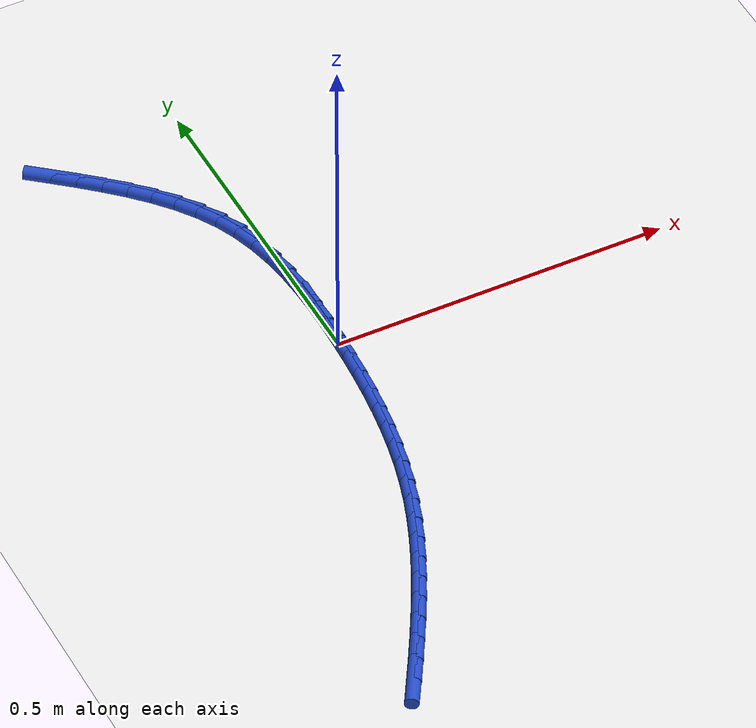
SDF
<sdf version="1.6">
 <world name="default">
  <model name="ground_plane">
   <static>1</static>
   <link name="link">
    <collision name="collision">
     <geometry><plane><normal>0 0 1</normal><size>100 100</size></plane></geometry>
     <surface><friction><ode><mu>100</mu><mu2>50</mu2></ode></friction></surface>
    </collision>
    <visual name="visual">
     <cast_shadows>0</cast_shadows>
     <geometry><plane><normal>0 0 1</normal><size>100 100</size></plane></geometry>
     <material>
      <script><uri>file://media/materials/scripts/gazebo.material</uri><name>Gazebo/WhiteGlow</name></script>
     </material>
    </visual>
   </link>
  </model>
  <model name="line">
   <link name="link_0">
    <pose>-1.2576745200831851e-17 3.469446951953614e-17 0.01 0 1.57 1.5442208761935035</pose>
    <collision name="collision">
     <geometry><cylinder><radius>0.01</radius><length>0.08</length></cylinder></geometry>
    </collision>
    <visual name="visual">
     <material>
      <script><name>Gazebo/Blue</name><uri>file://media/materials/scripts/gazebo.material</uri></script>
     </material>
     <geometry><cylinder><radius>0.01</radius><length>0.08</length></cylinder></geometry>
    </visual>
   </link>
   <link name="link_1">
    <pose>0.0009799392544859362 0.03686517164998687 0.01 0 1.57 -1.570191355124968</pose>
    <collision name="collision">
     <geometry><cylinder><radius>0.01</radius><length>0.08</length></cylinder></geometry>
    </collision>
    <visual name="visual">
     <material>
      <script><name>Gazebo/Blue</name><uri>file://media/materials/scripts/gazebo.material</uri></script>
     </material>
     <geometry><cylinder><radius>0.01</radius><length>0.08</length></cylinder></geometry>
    </visual>
   </link>
   <link name="link_2">
    <pose>0.0009576036723028721 0.07378521364273605 0.01 0 1.57 -1.5329855789430364</pose>
    <collision name="collision">
     <geometry><cylinder><radius>0.01</radius><length>0.08</length></cylinder></geometry>
    </collision>
    <visual name="visual">
     <material>
      <script><name>Gazebo/Blue</name><uri>file://media/materials/scripts/gazebo.material</uri></script>
     </material>
     <geometry><cylinder><radius>0.01</radius><length>0.08</length></cylinder></geometry>
    </visual>
   </link>
   <link name="link_3">
    <pose>-0.00043132697029535805 0.11050145868547574 0.01 0 1.57 -1.4849520792522348</pose>
    <collision name="collision">
     <geometry><cylinder><radius>0.01</radius><length>0.08</length></cylinder></geometry>
    </collision>
    <visual name="visual">
     <material>
      <script><name>Gazebo/Blue</name><uri>file://media/materials/scripts/gazebo.material</uri></script>
     </material>
     <geometry><cylinder><radius>0.01</radius><length>0.08</length></cylinder></geometry>
    </visual>
   </link>
   <link name="link_4">
    <pose>-0.0035511728970549113 0.1467552394854341 0.01 0 1.57 -1.4250680438499683</pose>
    <collision name="collision">
     <geometry><cylinder><radius>0.01</radius><length>0.08</length></cylinder></geometry>
    </collision>
    <visual name="visual">
     <material>
      <script><name>Gazebo/Blue</name><uri>file://media/materials/scripts/gazebo.material</uri></script>
     </material>
     <geometry><cylinder><radius>0.01</radius><length>0.08</length></cylinder></geometry>
    </visual>
   </link>
   <link name="link_5">
    <pose>-0.008766254331721943 0.18228788874983937 0.01 0 1.57 -1.352231468510381</pose>
    <collision name="collision">
     <geometry><cylinder><radius>0.01</radius><length>0.08</length></cylinder></geometry>
    </collision>
    <visual name="visual">
     <material>
      <script><name>Gazebo/Blue</name><uri>file://media/materials/scripts/gazebo.material</uri></script>
     </material>
     <geometry><cylinder><radius>0.01</radius><length>0.08</length></cylinder></geometry>
    </visual>
   </link>
   <link name="link_6">
    <pose>-0.016440891498042606 0.21684073918591967 0.01 0 1.57 -1.2655131130697617</pose>
    <collision name="collision">
     <geometry><cylinder><radius>0.01</radius><length>0.08</length></cylinder></geometry>
    </collision>
    <visual name="visual">
     <material>
      <script><name>Gazebo/Blue</name><uri>file://media/materials/scripts/gazebo.material</uri></script>
     </material>
     <geometry><cylinder><radius>0.01</radius><length>0.08</length></cylinder></geometry>
    </visual>
   </link>
   <link name="link_7">
    <pose>-0.026939404619763057 0.2501551235009031 0.01 0 1.57 -1.1645579242230624</pose>
    <collision name="collision">
     <geometry><cylinder><radius>0.01</radius><length>0.08</length></cylinder></geometry>
    </collision>
    <visual name="visual">
     <material>
      <script><name>Gazebo/Blue</name><uri>file://media/materials/scripts/gazebo.material</uri></script>
     </material>
     <geometry><cylinder><radius>0.01</radius><length>0.08</length></cylinder></geometry>
    </visual>
   </link>
   <link name="link_8">
    <pose>-0.040626113857494914 0.28197237443907197 0.01 0 1.57 -1.054779717884498</pose>
    <collision name="collision">
     <geometry><cylinder><radius>0.01</radius><length>0.08</length></cylinder></geometry>
    </collision>
    <visual name="visual">
     <material>
      <script><name>Gazebo/Blue</name><uri>file://media/materials/scripts/gazebo.material</uri></script>
     </material>
     <geometry><cylinder><radius>0.01</radius><length>0.08</length></cylinder></geometry>
    </visual>
   </link>
   <link name="link_9">
    <pose>-0.05772592724237543 0.3121156462107354 0.01 0 1.57 -0.9562241087145369</pose>
    <collision name="collision">
     <geometry><cylinder><radius>0.01</radius><length>0.08</length></cylinder></geometry>
    </collision>
    <visual name="visual">
     <material>
      <script><name>Gazebo/Blue</name><uri>file://media/materials/scripts/gazebo.material</uri></script>
     </material>
     <geometry><cylinder><radius>0.01</radius><length>0.08</length></cylinder></geometry>
    </visual>
   </link>
   <link name="link_10">
    <pose>-0.07791890071605993 0.3407278686217521 0.01 0 1.57 -0.87430412471775</pose>
    <collision name="collision">
     <geometry><cylinder><radius>0.01</radius><length>0.08</length></cylinder></geometry>
    </collision>
    <visual name="visual">
     <material>
      <script><name>Gazebo/Blue</name><uri>file://media/materials/scripts/gazebo.material</uri></script>
     </material>
     <geometry><cylinder><radius>0.01</radius><length>0.08</length></cylinder></geometry>
    </visual>
   </link>
   <link name="link_11">
    <pose>-0.10075200322788812 0.3680300806989035 0.01 0 1.57 -0.8086803140303752</pose>
    <collision name="collision">
     <geometry><cylinder><radius>0.01</radius><length>0.08</length></cylinder></geometry>
    </collision>
    <visual name="visual">
     <material>
      <script><name>Gazebo/Blue</name><uri>file://media/materials/scripts/gazebo.material</uri></script>
     </material>
     <geometry><cylinder><radius>0.01</radius><length>0.08</length></cylinder></geometry>
    </visual>
   </link>
   <link name="link_12">
    <pose>-0.12577220372719977 0.39424332146897073 0.01 0 1.57 -0.758361175305445</pose>
    <collision name="collision">
     <geometry><cylinder><radius>0.01</radius><length>0.08</length></cylinder></geometry>
    </collision>
    <visual name="visual">
     <material>
      <script><name>Gazebo/Blue</name><uri>file://media/materials/scripts/gazebo.material</uri></script>
     </material>
     <geometry><cylinder><radius>0.01</radius><length>0.08</length></cylinder></geometry>
    </visual>
   </link>
   <link name="link_13">
    <pose>-0.1525264711633347 0.41958862995873547 0.01 0 1.57 -0.7222043457416181</pose>
    <collision name="collision">
     <geometry><cylinder><radius>0.01</radius><length>0.08</length></cylinder></geometry>
    </collision>
    <visual name="visual">
     <material>
      <script><name>Gazebo/Blue</name><uri>file://media/materials/scripts/gazebo.material</uri></script>
     </material>
     <geometry><cylinder><radius>0.01</radius><length>0.08</length></cylinder></geometry>
    </visual>
   </link>
   <link name="link_14">
    <pose>-0.18056177448563257 0.444287045194979 0.01 0 1.57 -0.6992157820411935</pose>
    <collision name="collision">
     <geometry><cylinder><radius>0.01</radius><length>0.08</length></cylinder></geometry>
    </collision>
    <visual name="visual">
     <material>
      <script><name>Gazebo/Blue</name><uri>file://media/materials/scripts/gazebo.material</uri></script>
     </material>
     <geometry><cylinder><radius>0.01</radius><length>0.08</length></cylinder></geometry>
    </visual>
   </link>
   <link name="link_15">
    <pose>-0.20942508264343312 0.46855960620448256 0.01 0 1.57 -0.6887034426502311</pose>
    <collision name="collision">
     <geometry><cylinder><radius>0.01</radius><length>0.08</length></cylinder></geometry>
    </collision>
    <visual name="visual">
     <material>
      <script><name>Gazebo/Blue</name><uri>file://media/materials/scripts/gazebo.material</uri></script>
     </material>
     <geometry><cylinder><radius>0.01</radius><length>0.08</length></cylinder></geometry>
    </visual>
   </link>
   <link name="link_202">
    <pose>-0.19725773131092722 -0.6056717283787294 0.01 0 1.57 1.0293296119363267</pose>
    <collision name="collision">
     <geometry><cylinder><radius>0.01</radius><length>0.08</length></cylinder></geometry>
    </collision>
    <visual name="visual">
     <material>
      <script><name>Gazebo/Blue</name><uri>file://media/materials/scripts/gazebo.material</uri></script>
     </material>
     <geometry><cylinder><radius>0.01</radius><length>0.08</length></cylinder></geometry>
    </visual>
   </link>
   <link name="link_203">
    <pose>-0.17783792462449455 -0.5733820776230889 0.01 0 1.57 1.0427966446170578</pose>
    <collision name="collision">
     <geometry><cylinder><radius>0.01</radius><length>0.08</length></cylinder></geometry>
    </collision>
    <visual name="visual">
     <material>
      <script><name>Gazebo/Blue</name><uri>file://media/materials/scripts/gazebo.material</uri></script>
     </material>
     <geometry><cylinder><radius>0.01</radius><length>0.08</length></cylinder></geometry>
    </visual>
   </link>
   <link name="link_204">
    <pose>-0.15903261346520997 -0.5411388627116474 0.01 0 1.57 1.056076124286614</pose>
    <collision name="collision">
     <geometry><cylinder><radius>0.01</radius><length>0.08</length></cylinder></geometry>
    </collision>
    <visual name="visual">
     <material>
      <script><name>Gazebo/Blue</name><uri>file://media/materials/scripts/gazebo.material</uri></script>
     </material>
     <geometry><cylinder><radius>0.01</radius><length>0.08</length></cylinder></geometry>
    </visual>
   </link>
   <link name="link_205">
    <pose>-0.1408725267375772 -0.5090296367987822 0.01 0 1.57 1.0725524473567505</pose>
    <collision name="collision">
     <geometry><cylinder><radius>0.01</radius><length>0.08</length></cylinder></geometry>
    </collision>
    <visual name="visual">
     <material>
      <script><name>Gazebo/Blue</name><uri>file://media/materials/scripts/gazebo.material</uri></script>
     </material>
     <geometry><cylinder><radius>0.01</radius><length>0.08</length></cylinder></geometry>
    </visual>
   </link>
   <link name="link_206">
    <pose>-0.12345107534859694 -0.4770063489423828 0.01 0 1.57 1.0931935333749727</pose>
    <collision name="collision">
     <geometry><cylinder><radius>0.01</radius><length>0.08</length></cylinder></geometry>
    </collision>
    <visual name="visual">
     <material>
      <script><name>Gazebo/Blue</name><uri>file://media/materials/scripts/gazebo.material</uri></script>
     </material>
     <geometry><cylinder><radius>0.01</radius><length>0.08</length></cylinder></geometry>
    </visual>
   </link>
   <link name="link_207">
    <pose>-0.10687808526497142 -0.4449854364226177 0.01 0 1.57 1.1180817138592085</pose>
    <collision name="collision">
     <geometry><cylinder><radius>0.01</radius><length>0.08</length></cylinder></geometry>
    </collision>
    <visual name="visual">
     <material>
      <script><name>Gazebo/Blue</name><uri>file://media/materials/scripts/gazebo.material</uri></script>
     </material>
     <geometry><cylinder><radius>0.01</radius><length>0.08</length></cylinder></geometry>
    </visual>
   </link>
   <link name="link_208">
    <pose>-0.09126338251152549 -0.41288333639391983 0.01 0 1.57 1.1472594633005868</pose>
    <collision name="collision">
     <geometry><cylinder><radius>0.01</radius><length>0.08</length></cylinder></geometry>
    </collision>
    <visual name="visual">
     <material>
      <script><name>Gazebo/Blue</name><uri>file://media/materials/scripts/gazebo.material</uri></script>
     </material>
     <geometry><cylinder><radius>0.01</radius><length>0.08</length></cylinder></geometry>
    </visual>
   </link>
   <link name="link_209">
    <pose>-0.07671679311308295 -0.38061648601072007 0.01 0 1.57 1.1807139227774472</pose>
    <collision name="collision">
     <geometry><cylinder><radius>0.01</radius><length>0.08</length></cylinder></geometry>
    </collision>
    <visual name="visual">
     <material>
      <script><name>Gazebo/Blue</name><uri>file://media/materials/scripts/gazebo.material</uri></script>
     </material>
     <geometry><cylinder><radius>0.01</radius><length>0.08</length></cylinder></geometry>
    </visual>
   </link>
   <link name="link_210">
    <pose>-0.06334814309446782 -0.3481013224274495 0.01 0 1.57 1.218359758468535</pose>
    <collision name="collision">
     <geometry><cylinder><radius>0.01</radius><length>0.08</length></cylinder></geometry>
    </collision>
    <visual name="visual">
     <material>
      <script><name>Gazebo/Blue</name><uri>file://media/materials/scripts/gazebo.material</uri></script>
     </material>
     <geometry><cylinder><radius>0.01</radius><length>0.08</length></cylinder></geometry>
    </visual>
   </link>
   <link name="link_211">
    <pose>-0.0512672584805042 -0.3152542827985395 0.01 0 1.57 1.2600219855831811</pose>
    <collision name="collision">
     <geometry><cylinder><radius>0.01</radius><length>0.08</length></cylinder></geometry>
    </collision>
    <visual name="visual">
     <material>
      <script><name>Gazebo/Blue</name><uri>file://media/materials/scripts/gazebo.material</uri></script>
     </material>
     <geometry><cylinder><radius>0.01</radius><length>0.08</length></cylinder></geometry>
    </visual>
   </link>
   <link name="link_212">
    <pose>-0.04058396529601599 -0.2819918042784208 0.01 0 1.57 1.304308240759395</pose>
    <collision name="collision">
     <geometry><cylinder><radius>0.01</radius><length>0.08</length></cylinder></geometry>
    </collision>
    <visual name="visual">
     <material>
      <script><name>Gazebo/Blue</name><uri>file://media/materials/scripts/gazebo.material</uri></script>
     </material>
     <geometry><cylinder><radius>0.01</radius><length>0.08</length></cylinder></geometry>
    </visual>
   </link>
   <link name="link_213">
    <pose>-0.031372475933421184 -0.2482477219769582 0.01 0 1.57 1.34637908940853</pose>
    <collision name="collision">
     <geometry><cylinder><radius>0.01</radius><length>0.08</length></cylinder></geometry>
    </collision>
    <visual name="visual">
     <material>
      <script><name>Gazebo/Blue</name><uri>file://media/materials/scripts/gazebo.material</uri></script>
     </material>
     <geometry><cylinder><radius>0.01</radius><length>0.08</length></cylinder></geometry>
    </visual>
   </link>
   <link name="link_214">
    <pose>-0.02356120219491289 -0.21402709744173815 0.01 0 1.57 1.384930219900652</pose>
    <collision name="collision">
     <geometry><cylinder><radius>0.01</radius><length>0.08</length></cylinder></geometry>
    </collision>
    <visual name="visual">
     <material>
      <script><name>Gazebo/Blue</name><uri>file://media/materials/scripts/gazebo.material</uri></script>
     </material>
     <geometry><cylinder><radius>0.01</radius><length>0.08</length></cylinder></geometry>
    </visual>
   </link>
   <link name="link_215">
    <pose>-0.017041249664805937 -0.17935321703686088 0.01 0 1.57 1.4199025018105136</pose>
    <collision name="collision">
     <geometry><cylinder><radius>0.01</radius><length>0.08</length></cylinder></geometry>
    </collision>
    <visual name="visual">
     <material>
      <script><name>Gazebo/Blue</name><uri>file://media/materials/scripts/gazebo.material</uri></script>
     </material>
     <geometry><cylinder><radius>0.01</radius><length>0.08</length></cylinder></geometry>
    </visual>
   </link>
   <link name="link_216">
    <pose>-0.011703723910520453 -0.14424936713467948 0.01 0 1.57 1.4512916295339495</pose>
    <collision name="collision">
     <geometry><cylinder><radius>0.01</radius><length>0.08</length></cylinder></geometry>
    </collision>
    <visual name="visual">
     <material>
      <script><name>Gazebo/Blue</name><uri>file://media/materials/scripts/gazebo.material</uri></script>
     </material>
     <geometry><cylinder><radius>0.01</radius><length>0.08</length></cylinder></geometry>
    </visual>
   </link>
   <link name="link_217">
    <pose>-0.007439730499476956 -0.10873883410754945 0.01 0 1.57 1.4791343096307483</pose>
    <collision name="collision">
     <geometry><cylinder><radius>0.01</radius><length>0.08</length></cylinder></geometry>
    </collision>
    <visual name="visual">
     <material>
      <script><name>Gazebo/Blue</name><uri>file://media/materials/scripts/gazebo.material</uri></script>
     </material>
     <geometry><cylinder><radius>0.01</radius><length>0.08</length></cylinder></geometry>
    </visual>
   </link>
   <link name="link_218">
    <pose>-0.004140374999095555 -0.07284490432782374 0.01 0 1.57 1.503495646742978</pose>
    <collision name="collision">
     <geometry><cylinder><radius>0.01</radius><length>0.08</length></cylinder></geometry>
    </collision>
    <visual name="visual">
     <material>
      <script><name>Gazebo/Blue</name><uri>file://media/materials/scripts/gazebo.material</uri></script>
     </material>
     <geometry><cylinder><radius>0.01</radius><length>0.08</length></cylinder></geometry>
    </visual>
   </link>
   <link name="link_219">
    <pose>-0.0016967629767964993 -0.03659086416785625 0.01 0 1.57 1.5244583021384783</pose>
    <collision name="collision">
     <geometry><cylinder><radius>0.01</radius><length>0.08</length></cylinder></geometry>
    </collision>
    <visual name="visual">
     <material>
      <script><name>Gazebo/Blue</name><uri>file://media/materials/scripts/gazebo.material</uri></script>
     </material>
     <geometry><cylinder><radius>0.01</radius><length>0.08</length></cylinder></geometry>
    </visual>
   </link>
   <link name="link_220">
    <pose>-8.023096076392733e-18 1.3877787807814457e-16 0.01 0 1.57 1.5421136240120858</pose>
    <collision name="collision">
     <geometry><cylinder><radius>0.01</radius><length>0.08</length></cylinder></geometry>
    </collision>
    <visual name="visual">
     <material>
      <script><name>Gazebo/Blue</name><uri>file://media/materials/scripts/gazebo.material</uri></script>
     </material>
     <geometry><cylinder><radius>0.01</radius><length>0.08</length></cylinder></geometry>
    </visual>
   </link>
   <link name="link_221">
    <pose>0.001058808363873566 0.036904401803388866 0.01 0 1.57 1.556554699997232</pose>
    <collision name="collision">
     <geometry><cylinder><radius>0.01</radius><length>0.08</length></cylinder></geometry>
    </collision>
    <visual name="visual">
     <material>
      <script><name>Gazebo/Blue</name><uri>file://media/materials/scripts/gazebo.material</uri></script>
     </material>
     <geometry><cylinder><radius>0.01</radius><length>0.08</length></cylinder></geometry>
    </visual>
   </link>
   <link name="link_222">
    <pose>0.0015885565474040783 0.07409905486995974 0.01 0 1.57 1.5493613267072848</pose>
    <collision name="collision">
     <geometry><cylinder><radius>0.01</radius><length>0.08</length></cylinder></geometry>
    </collision>
    <visual name="visual">
     <material>
      <script><name>Gazebo/Blue</name><uri>file://media/materials/scripts/gazebo.material</uri></script>
     </material>
     <geometry><cylinder><radius>0.01</radius><length>0.08</length></cylinder></geometry>
    </visual>
   </link>
  </model>
 </world>
</sdf>
